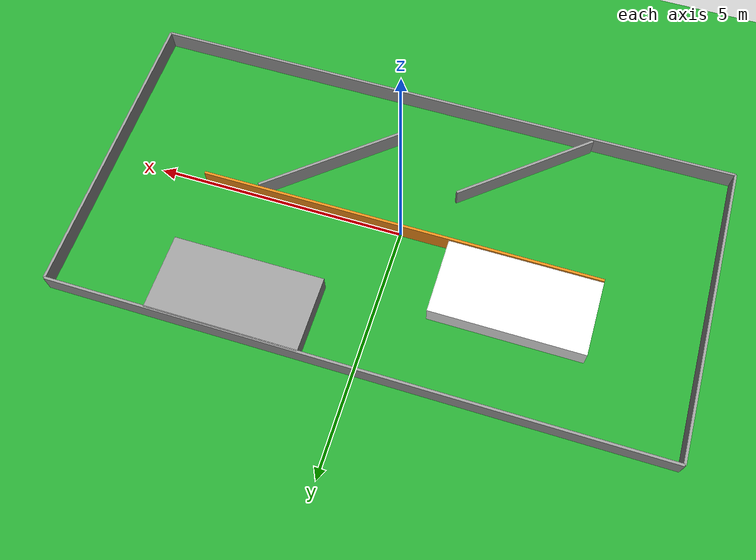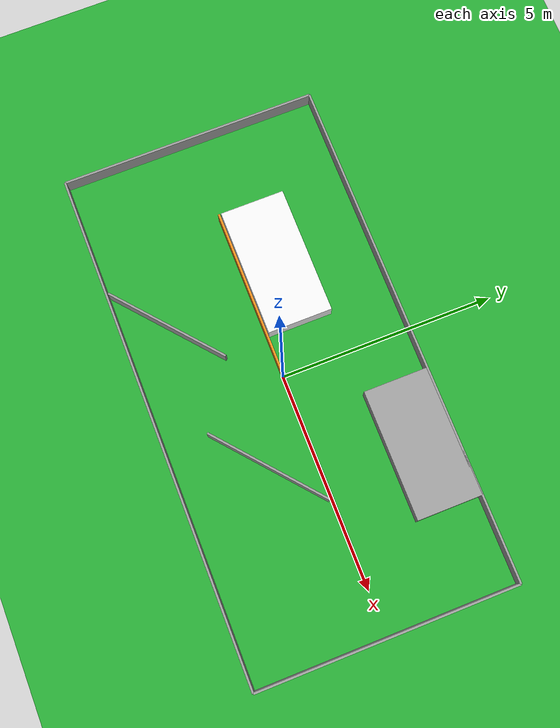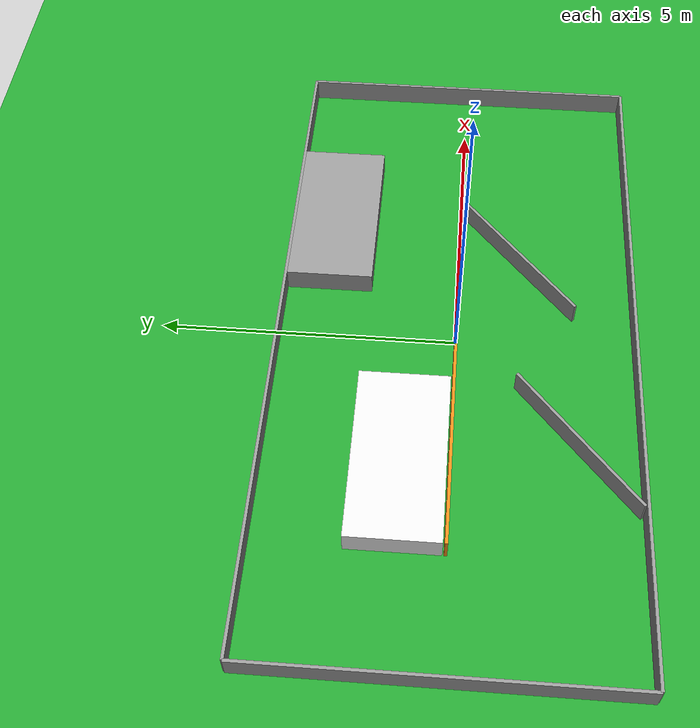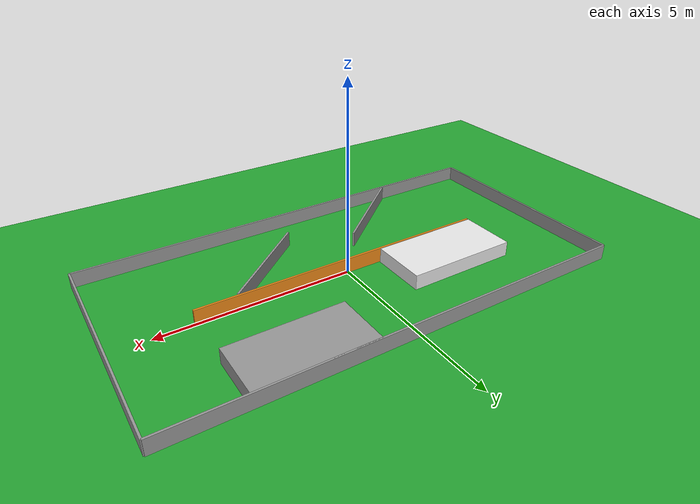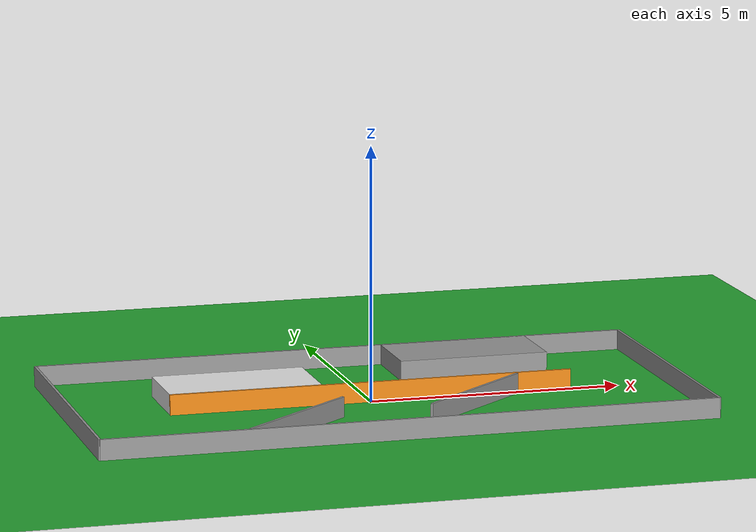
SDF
<sdf version="1.7">
 <world name="default">
  <light name="sun" type="directional">
   <pose>0 0 10 0 -0 0</pose>
   <diffuse>0.8 0.8 0.8 1</diffuse>
   <specular>0.2 0.2 0.2 1</specular>
   <attenuation>
    <range>1000</range>
    <constant>0.9</constant>
    <linear>0.01</linear>
    <quadratic>0.001</quadratic>
   </attenuation>
   <direction>-0.5 0.1 -0.9</direction>
   <spot><inner_angle>0</inner_angle><outer_angle>0</outer_angle><falloff>0</falloff></spot>
  </light>
  <model name="ground_plane">
   <static>1</static>
   <link name="ground_plane1">
    <collision name="ground_plane2">
     <geometry><plane><normal>0 0 1</normal><size>100 100</size></plane></geometry>
     <surface>
      <contact><collide_bitmask>65535</collide_bitmask></contact>
      <friction><ode><mu>1000</mu><mu2>50</mu2></ode></friction>
     </surface>
    </collision>
    <visual name="ground_plane3">
     <cast_shadows>0</cast_shadows>
     <geometry><plane><normal>0 0 1</normal><size>14 8</size></plane></geometry>
     <material>
      <script><uri>file://media/materials/scripts/gazebo.material</uri><name>Gazebo/Green</name></script>
     </material>
    </visual>
   </link>
  </model>
  <gravity>0 0 -9.8</gravity>
  <magnetic_field>6e-06 2.3e-05 -4.2e-05</magnetic_field>
  <atmosphere type="adiabatic"/>
  <physics type="ode">
   <max_step_size>0.001</max_step_size>
   <real_time_factor>1</real_time_factor>
   <real_time_update_rate>1000</real_time_update_rate>
  </physics>
  <scene><ambient>0.1 0.2 0.1 .7</ambient><background>0.7 .7 0.7 1</background><shadows>1</shadows></scene>
  <spherical_coordinates>
   <surface_model>EARTH_WGS84</surface_model>
   <latitude_deg>0</latitude_deg>
   <longitude_deg>0</longitude_deg>
   <elevation>0</elevation>
   <heading_deg>0</heading_deg>
  </spherical_coordinates>
  <model name="NavigationTest">
   <link name="link_0_clone">
    <inertial>
     <mass>1</mass>
     <inertia>
      <ixx>0.166667</ixx>
      <ixy>0</ixy>
      <ixz>0</ixz>
      <iyy>0.166667</iyy>
      <iyz>0</iyz>
      <izz>0.166667</izz>
     </inertia>
    </inertial>
    <pose>0.028291 -0.004797 0 0 -0 0</pose>
    <visual name="link_0_clone1">
     <pose>0 0 0.2 0 -0 0</pose>
     <geometry><box><size>8 0.05 0.4</size></box></geometry>
     <material>
      <lighting>1</lighting>
      <script><uri>file://media/materials/scripts/gazebo.material</uri><name>Gazebo/Orange</name></script>
      <shader type="pixel"><normal_map>__default__</normal_map></shader>
      <ambient>0.4 0.3 0.3 1</ambient>
      <diffuse>0.7 0.7 0.7 1</diffuse>
      <specular>0.01 0.01 0.01 1</specular>
      <emissive>0 0 0 1</emissive>
     </material>
    </visual>
    <collision name="collision2">
     <pose>0 0 0.2 0 -0 0</pose>
     <geometry><box><size>8 0.05 0.4</size></box></geometry>
     <surface>
      <friction>
       <ode><mu>1</mu><mu2>1</mu2><fdir1>0 0 0</fdir1><slip1>0</slip1><slip2>0</slip2></ode>
       <torsional>
        <coefficient>1</coefficient>
        <patch_radius>0</patch_radius>
        <surface_radius>0</surface_radius>
        <use_patch_radius>1</use_patch_radius>
        <ode><slip>0</slip></ode>
       </torsional>
      </friction>
      <bounce><restitution_coefficient>0</restitution_coefficient><threshold>1e+06</threshold></bounce>
      <contact>
       <collide_without_contact>0</collide_without_contact>
       <collide_without_contact_bitmask>1</collide_without_contact_bitmask>
       <collide_bitmask>1</collide_bitmask>
       <ode>
        <soft_cfm>0</soft_cfm>
        <soft_erp>0.2</soft_erp>
        <kp>1e+13</kp>
        <kd>1</kd>
        <max_vel>0.01</max_vel>
        <min_depth>0</min_depth>
       </ode>
       <bullet>
        <split_impulse>1</split_impulse>
        <split_impulse_penetration_threshold>-0.01</split_impulse_penetration_threshold>
        <soft_cfm>0</soft_cfm>
        <soft_erp>0.2</soft_erp>
        <kp>1e+13</kp>
        <kd>1</kd>
       </bullet>
      </contact>
     </surface>
    </collision>
   </link>
   <link name="link_0_clone_6">
    <inertial>
     <mass>1</mass>
     <inertia>
      <ixx>0.166667</ixx>
      <ixy>0</ixy>
      <ixz>0</ixz>
      <iyy>0.166667</iyy>
      <iyz>0</iyz>
      <izz>0.166667</izz>
     </inertia>
    </inertial>
    <pose>0.028291 -3.0048 0 0 -0 0</pose>
    <visual name="visual">
     <pose>0 0 0.2 0 -0 0</pose>
     <geometry><box><size>12 0.05 0.4</size></box></geometry>
     <material>
      <lighting>1</lighting>
      <script><uri>file://media/materials/scripts/gazebo.material</uri><name>Gazebo/Grey</name></script>
      <shader type="pixel"><normal_map>__default__</normal_map></shader>
      <ambient>0.3 0.3 0.3 1</ambient>
      <diffuse>0.7 0.7 0.7 1</diffuse>
      <specular>0.01 0.01 0.01 1</specular>
      <emissive>0 0 0 1</emissive>
     </material>
    </visual>
    <collision name="collision">
     <pose>0 0 0.2 0 -0 0</pose>
     <geometry><box><size>12 0.05 0.4</size></box></geometry>
     <surface>
      <friction>
       <ode><mu>1</mu><mu2>1</mu2><fdir1>0 0 0</fdir1><slip1>0</slip1><slip2>0</slip2></ode>
       <torsional>
        <coefficient>1</coefficient>
        <patch_radius>0</patch_radius>
        <surface_radius>0</surface_radius>
        <use_patch_radius>1</use_patch_radius>
        <ode><slip>0</slip></ode>
       </torsional>
      </friction>
      <bounce><restitution_coefficient>0</restitution_coefficient><threshold>1e+06</threshold></bounce>
      <contact>
       <collide_without_contact>0</collide_without_contact>
       <collide_without_contact_bitmask>1</collide_without_contact_bitmask>
       <collide_bitmask>1</collide_bitmask>
       <ode>
        <soft_cfm>0</soft_cfm>
        <soft_erp>0.2</soft_erp>
        <kp>1e+13</kp>
        <kd>1</kd>
        <max_vel>0.01</max_vel>
        <min_depth>0</min_depth>
       </ode>
       <bullet>
        <split_impulse>1</split_impulse>
        <split_impulse_penetration_threshold>-0.01</split_impulse_penetration_threshold>
        <soft_cfm>0</soft_cfm>
        <soft_erp>0.2</soft_erp>
        <kp>1e+13</kp>
        <kd>1</kd>
       </bullet>
      </contact>
     </surface>
    </collision>
   </link>
   <link name="link_0_clone_6_clone">
    <inertial>
     <mass>1</mass>
     <inertia>
      <ixx>0.166667</ixx>
      <ixy>0</ixy>
      <ixz>0</ixz>
      <iyy>0.166667</iyy>
      <iyz>0</iyz>
      <izz>0.166667</izz>
     </inertia>
    </inertial>
    <pose>0.028291 2.9952 0 0 -0 0</pose>
    <visual name="visual">
     <pose>0 0 0.2 0 -0 0</pose>
     <geometry><box><size>12 0.05 0.4</size></box></geometry>
     <material>
      <lighting>1</lighting>
      <script><uri>file://media/materials/scripts/gazebo.material</uri><name>Gazebo/Grey</name></script>
      <shader type="pixel"><normal_map>__default__</normal_map></shader>
      <ambient>0.3 0.3 0.3 1</ambient>
      <diffuse>0.7 0.7 0.7 1</diffuse>
      <specular>0.01 0.01 0.01 1</specular>
      <emissive>0 0 0 1</emissive>
     </material>
    </visual>
    <collision name="collision">
     <pose>0 0 0.2 0 -0 0</pose>
     <geometry><box><size>12 0.05 0.4</size></box></geometry>
     <surface>
      <friction>
       <ode><mu>1</mu><mu2>1</mu2><fdir1>0 0 0</fdir1><slip1>0</slip1><slip2>0</slip2></ode>
       <torsional>
        <coefficient>1</coefficient>
        <patch_radius>0</patch_radius>
        <surface_radius>0</surface_radius>
        <use_patch_radius>1</use_patch_radius>
        <ode><slip>0</slip></ode>
       </torsional>
      </friction>
      <bounce><restitution_coefficient>0</restitution_coefficient><threshold>1e+06</threshold></bounce>
      <contact>
       <collide_without_contact>0</collide_without_contact>
       <collide_without_contact_bitmask>1</collide_without_contact_bitmask>
       <collide_bitmask>1</collide_bitmask>
       <ode>
        <soft_cfm>0</soft_cfm>
        <soft_erp>0.2</soft_erp>
        <kp>1e+13</kp>
        <kd>1</kd>
        <max_vel>0.01</max_vel>
        <min_depth>0</min_depth>
       </ode>
       <bullet>
        <split_impulse>1</split_impulse>
        <split_impulse_penetration_threshold>-0.01</split_impulse_penetration_threshold>
        <soft_cfm>0</soft_cfm>
        <soft_erp>0.2</soft_erp>
        <kp>1e+13</kp>
        <kd>1</kd>
       </bullet>
      </contact>
     </surface>
    </collision>
   </link>
   <link name="link_0_clone_8_clone">
    <inertial>
     <mass>1</mass>
     <inertia>
      <ixx>0.166667</ixx>
      <ixy>0</ixy>
      <ixz>0</ixz>
      <iyy>0.166667</iyy>
      <iyz>0</iyz>
      <izz>0.166667</izz>
     </inertia>
    </inertial>
    <pose>6.02829 -0.004797 0 0 -0 0</pose>
    <visual name="visual">
     <pose>0 0 0.2 0 -0 0</pose>
     <geometry><box><size>0.05 6 0.4</size></box></geometry>
     <material>
      <lighting>1</lighting>
      <script><uri>file://media/materials/scripts/gazebo.material</uri><name>Gazebo/Grey</name></script>
      <shader type="pixel"><normal_map>__default__</normal_map></shader>
      <ambient>0.3 0.3 0.3 1</ambient>
      <diffuse>0.7 0.7 0.7 1</diffuse>
      <specular>0.01 0.01 0.01 1</specular>
      <emissive>0 0 0 1</emissive>
     </material>
    </visual>
    <collision name="collision">
     <pose>0 0 0.2 0 -0 0</pose>
     <geometry><box><size>0.05 6 0.4</size></box></geometry>
     <surface>
      <friction>
       <ode><mu>1</mu><mu2>1</mu2><fdir1>0 0 0</fdir1><slip1>0</slip1><slip2>0</slip2></ode>
       <torsional>
        <coefficient>1</coefficient>
        <patch_radius>0</patch_radius>
        <surface_radius>0</surface_radius>
        <use_patch_radius>1</use_patch_radius>
        <ode><slip>0</slip></ode>
       </torsional>
      </friction>
      <bounce><restitution_coefficient>0</restitution_coefficient><threshold>1e+06</threshold></bounce>
      <contact>
       <collide_without_contact>0</collide_without_contact>
       <collide_without_contact_bitmask>1</collide_without_contact_bitmask>
       <collide_bitmask>1</collide_bitmask>
       <ode>
        <soft_cfm>0</soft_cfm>
        <soft_erp>0.2</soft_erp>
        <kp>1e+13</kp>
        <kd>1</kd>
        <max_vel>0.01</max_vel>
        <min_depth>0</min_depth>
       </ode>
       <bullet>
        <split_impulse>1</split_impulse>
        <split_impulse_penetration_threshold>-0.01</split_impulse_penetration_threshold>
        <soft_cfm>0</soft_cfm>
        <soft_erp>0.2</soft_erp>
        <kp>1e+13</kp>
        <kd>1</kd>
       </bullet>
      </contact>
     </surface>
    </collision>
   </link>
   <link name="link_0_clone_8_clone_clone">
    <inertial>
     <mass>1</mass>
     <inertia>
      <ixx>0.166667</ixx>
      <ixy>0</ixy>
      <ixz>0</ixz>
      <iyy>0.166667</iyy>
      <iyz>0</iyz>
      <izz>0.166667</izz>
     </inertia>
    </inertial>
    <pose>-5.97171 -0.004797 0 0 -0 0</pose>
    <visual name="visual">
     <pose>0 0 0.2 0 -0 0</pose>
     <geometry><box><size>0.05 6 0.4</size></box></geometry>
     <material>
      <lighting>1</lighting>
      <script><uri>file://media/materials/scripts/gazebo.material</uri><name>Gazebo/Grey</name></script>
      <shader type="pixel"><normal_map>__default__</normal_map></shader>
      <ambient>0.3 0.3 0.3 1</ambient>
      <diffuse>0.7 0.7 0.7 1</diffuse>
      <specular>0.01 0.01 0.01 1</specular>
      <emissive>0 0 0 1</emissive>
     </material>
    </visual>
    <collision name="collision">
     <pose>0 0 0.2 0 -0 0</pose>
     <geometry><box><size>0.05 6 0.4</size></box></geometry>
     <surface>
      <friction>
       <ode><mu>1</mu><mu2>1</mu2><fdir1>0 0 0</fdir1><slip1>0</slip1><slip2>0</slip2></ode>
       <torsional>
        <coefficient>1</coefficient>
        <patch_radius>0</patch_radius>
        <surface_radius>0</surface_radius>
        <use_patch_radius>1</use_patch_radius>
        <ode><slip>0</slip></ode>
       </torsional>
      </friction>
      <bounce><restitution_coefficient>0</restitution_coefficient><threshold>1e+06</threshold></bounce>
      <contact>
       <collide_without_contact>0</collide_without_contact>
       <collide_without_contact_bitmask>1</collide_without_contact_bitmask>
       <collide_bitmask>1</collide_bitmask>
       <ode>
        <soft_cfm>0</soft_cfm>
        <soft_erp>0.2</soft_erp>
        <kp>1e+13</kp>
        <kd>1</kd>
        <max_vel>0.01</max_vel>
        <min_depth>0</min_depth>
       </ode>
       <bullet>
        <split_impulse>1</split_impulse>
        <split_impulse_penetration_threshold>-0.01</split_impulse_penetration_threshold>
        <soft_cfm>0</soft_cfm>
        <soft_erp>0.2</soft_erp>
        <kp>1e+13</kp>
        <kd>1</kd>
       </bullet>
      </contact>
     </surface>
    </collision>
   </link>
   <link name="link_0_clone_clone">
    <inertial>
     <mass>1</mass>
     <inertia>
      <ixx>0.166667</ixx>
      <ixy>0</ixy>
      <ixz>0</ixz>
      <iyy>0.166667</iyy>
      <iyz>0</iyz>
      <izz>0.166667</izz>
     </inertia>
    </inertial>
    <pose>2.52829 2.2452 0 0 -0 0</pose>
    <visual name="visual">
     <pose>0 0 0.2 0 -0 0</pose>
     <geometry><box><size>3 1.5 0.4</size></box></geometry>
     <material>
      <lighting>1</lighting>
      <script><uri>file://media/materials/scripts/gazebo.material</uri><name>Gazebo/Grey</name></script>
      <shader type="pixel"><normal_map>__default__</normal_map></shader>
      <ambient>0.3 0.3 0.3 1</ambient>
      <diffuse>0.7 0.7 0.7 1</diffuse>
      <specular>0.01 0.01 0.01 1</specular>
      <emissive>0 0 0 1</emissive>
     </material>
    </visual>
    <collision name="collision">
     <pose>0 0 0.2 0 -0 0</pose>
     <geometry><box><size>3 1.5 0.4</size></box></geometry>
     <surface>
      <friction>
       <ode><mu>1</mu><mu2>1</mu2><fdir1>0 0 0</fdir1><slip1>0</slip1><slip2>0</slip2></ode>
       <torsional>
        <coefficient>1</coefficient>
        <patch_radius>0</patch_radius>
        <surface_radius>0</surface_radius>
        <use_patch_radius>1</use_patch_radius>
        <ode><slip>0</slip></ode>
       </torsional>
      </friction>
      <bounce><restitution_coefficient>0</restitution_coefficient><threshold>1e+06</threshold></bounce>
      <contact>
       <collide_without_contact>0</collide_without_contact>
       <collide_without_contact_bitmask>1</collide_without_contact_bitmask>
       <collide_bitmask>1</collide_bitmask>
       <ode>
        <soft_cfm>0</soft_cfm>
        <soft_erp>0.2</soft_erp>
        <kp>1e+13</kp>
        <kd>1</kd>
        <max_vel>0.01</max_vel>
        <min_depth>0</min_depth>
       </ode>
       <bullet>
        <split_impulse>1</split_impulse>
        <split_impulse_penetration_threshold>-0.01</split_impulse_penetration_threshold>
        <soft_cfm>0</soft_cfm>
        <soft_erp>0.2</soft_erp>
        <kp>1e+13</kp>
        <kd>1</kd>
       </bullet>
      </contact>
     </surface>
    </collision>
   </link>
   <link name="link_0_clone_clone_0">
    <inertial>
     <mass>1</mass>
     <inertia>
      <ixx>0.166667</ixx>
      <ixy>0</ixy>
      <ixz>0</ixz>
      <iyy>0.166667</iyy>
      <iyz>0</iyz>
      <izz>0.166667</izz>
     </inertia>
    </inertial>
    <pose>-1.97898 -1.9869 0 0 -0 0</pose>
    <visual name="visual">
     <pose>0 0 0.2 0 -0 0.7</pose>
     <geometry><box><size>3 0.05 0.4</size></box></geometry>
     <material>
      <lighting>1</lighting>
      <script><uri>file://media/materials/scripts/gazebo.material</uri><name>Gazebo/Grey</name></script>
      <shader type="pixel"><normal_map>__default__</normal_map></shader>
      <ambient>0.3 0.3 0.3 1</ambient>
      <diffuse>0.7 0.7 0.7 1</diffuse>
      <specular>0.01 0.01 0.01 1</specular>
      <emissive>0 0 0 1</emissive>
     </material>
    </visual>
    <collision name="collision">
     <pose>0 0 0.2 0 -0 0.7</pose>
     <geometry><box><size>3 0.05 0.4</size></box></geometry>
     <surface>
      <friction>
       <ode><mu>1</mu><mu2>1</mu2><fdir1>0 0 0</fdir1><slip1>0</slip1><slip2>0</slip2></ode>
       <torsional>
        <coefficient>1</coefficient>
        <patch_radius>0</patch_radius>
        <surface_radius>0</surface_radius>
        <use_patch_radius>1</use_patch_radius>
        <ode><slip>0</slip></ode>
       </torsional>
      </friction>
      <bounce><restitution_coefficient>0</restitution_coefficient><threshold>1e+06</threshold></bounce>
      <contact>
       <collide_without_contact>0</collide_without_contact>
       <collide_without_contact_bitmask>1</collide_without_contact_bitmask>
       <collide_bitmask>1</collide_bitmask>
       <ode>
        <soft_cfm>0</soft_cfm>
        <soft_erp>0.2</soft_erp>
        <kp>1e+13</kp>
        <kd>1</kd>
        <max_vel>0.01</max_vel>
        <min_depth>0</min_depth>
       </ode>
       <bullet>
        <split_impulse>1</split_impulse>
        <split_impulse_penetration_threshold>-0.01</split_impulse_penetration_threshold>
        <soft_cfm>0</soft_cfm>
        <soft_erp>0.2</soft_erp>
        <kp>1e+13</kp>
        <kd>1</kd>
       </bullet>
      </contact>
     </surface>
    </collision>
   </link>
   <link name="link_0_clone_clone_0_clone">
    <inertial>
     <mass>1</mass>
     <inertia>
      <ixx>0.166667</ixx>
      <ixy>0</ixy>
      <ixz>0</ixz>
      <iyy>0.166667</iyy>
      <iyz>0</iyz>
      <izz>0.166667</izz>
     </inertia>
    </inertial>
    <pose>1.78094 -1.02952 0 0 -0 0</pose>
    <visual name="visual">
     <pose>0 0 0.2 0 -0 0.7</pose>
     <geometry><box><size>3 0.05 0.4</size></box></geometry>
     <material>
      <lighting>1</lighting>
      <script><uri>file://media/materials/scripts/gazebo.material</uri><name>Gazebo/Grey</name></script>
      <shader type="pixel"><normal_map>__default__</normal_map></shader>
      <ambient>0.3 0.3 0.3 1</ambient>
      <diffuse>0.7 0.7 0.7 1</diffuse>
      <specular>0.01 0.01 0.01 1</specular>
      <emissive>0 0 0 1</emissive>
     </material>
    </visual>
    <collision name="collision">
     <pose>0 0 0.2 0 -0 0.7</pose>
     <geometry><box><size>3 0.05 0.4</size></box></geometry>
     <surface>
      <friction>
       <ode><mu>1</mu><mu2>1</mu2><fdir1>0 0 0</fdir1><slip1>0</slip1><slip2>0</slip2></ode>
       <torsional>
        <coefficient>1</coefficient>
        <patch_radius>0</patch_radius>
        <surface_radius>0</surface_radius>
        <use_patch_radius>1</use_patch_radius>
        <ode><slip>0</slip></ode>
       </torsional>
      </friction>
      <bounce><restitution_coefficient>0</restitution_coefficient><threshold>1e+06</threshold></bounce>
      <contact>
       <collide_without_contact>0</collide_without_contact>
       <collide_without_contact_bitmask>1</collide_without_contact_bitmask>
       <collide_bitmask>1</collide_bitmask>
       <ode>
        <soft_cfm>0</soft_cfm>
        <soft_erp>0.2</soft_erp>
        <kp>1e+13</kp>
        <kd>1</kd>
        <max_vel>0.01</max_vel>
        <min_depth>0</min_depth>
       </ode>
       <bullet>
        <split_impulse>1</split_impulse>
        <split_impulse_penetration_threshold>-0.01</split_impulse_penetration_threshold>
        <soft_cfm>0</soft_cfm>
        <soft_erp>0.2</soft_erp>
        <kp>1e+13</kp>
        <kd>1</kd>
       </bullet>
      </contact>
     </surface>
    </collision>
   </link>
   <link name="link_0_clone_clone_clone">
    <inertial>
     <mass>1</mass>
     <inertia>
      <ixx>0.166667</ixx>
      <ixy>0</ixy>
      <ixz>0</ixz>
      <iyy>0.166667</iyy>
      <iyz>0</iyz>
      <izz>0.166667</izz>
     </inertia>
    </inertial>
    <pose>-2.47171 0.795203 0 0 -0 0</pose>
    <visual name="link_0_clone_clone_clone">
     <pose>0 0 0.2 0 -0 0</pose>
     <geometry><box><size>3 1.5 0.4</size></box></geometry>
     <material>
      <lighting>1</lighting>
      <script><uri>file://media/materials/scripts/gazebo.material</uri><name>Gazebo/White</name></script>
      <shader type="pixel"><normal_map>__default__</normal_map></shader>
      <ambient>0.3 0.3 0.3 1</ambient>
      <diffuse>0.7 0.7 0.7 1</diffuse>
      <specular>0.01 0.01 0.01 1</specular>
      <emissive>0 0 0 1</emissive>
     </material>
    </visual>
    <collision name="collision">
     <pose>0 0 0.2 0 -0 0</pose>
     <geometry><box><size>3 1.5 0.4</size></box></geometry>
     <surface>
      <friction>
       <ode><mu>1</mu><mu2>1</mu2><fdir1>0 0 0</fdir1><slip1>0</slip1><slip2>0</slip2></ode>
       <torsional>
        <coefficient>1</coefficient>
        <patch_radius>0</patch_radius>
        <surface_radius>0</surface_radius>
        <use_patch_radius>1</use_patch_radius>
        <ode><slip>0</slip></ode>
       </torsional>
      </friction>
      <bounce><restitution_coefficient>0</restitution_coefficient><threshold>1e+06</threshold></bounce>
      <contact>
       <collide_without_contact>0</collide_without_contact>
       <collide_without_contact_bitmask>1</collide_without_contact_bitmask>
       <collide_bitmask>1</collide_bitmask>
       <ode>
        <soft_cfm>0</soft_cfm>
        <soft_erp>0.2</soft_erp>
        <kp>1e+13</kp>
        <kd>1</kd>
        <max_vel>0.01</max_vel>
        <min_depth>0</min_depth>
       </ode>
       <bullet>
        <split_impulse>1</split_impulse>
        <split_impulse_penetration_threshold>-0.01</split_impulse_penetration_threshold>
        <soft_cfm>0</soft_cfm>
        <soft_erp>0.2</soft_erp>
        <kp>1e+13</kp>
        <kd>1</kd>
       </bullet>
      </contact>
     </surface>
    </collision>
   </link>
   <static>0</static>
   <pose>-0 0 -1e-06 1.1e-05 -0 0</pose>
  </model>
 </world>
</sdf>
